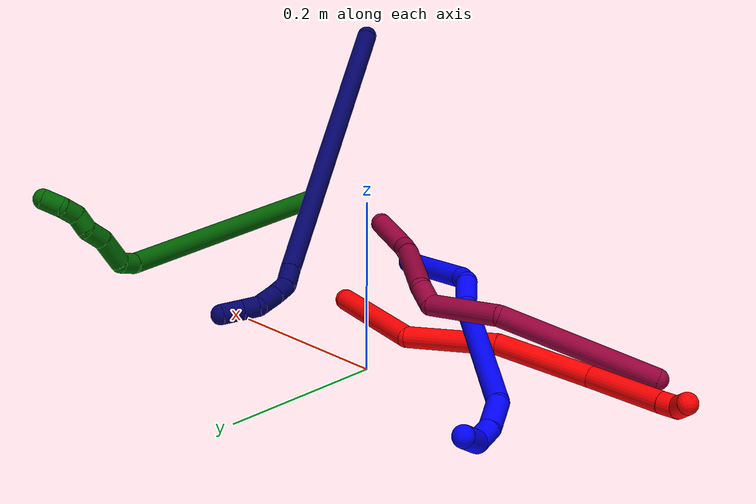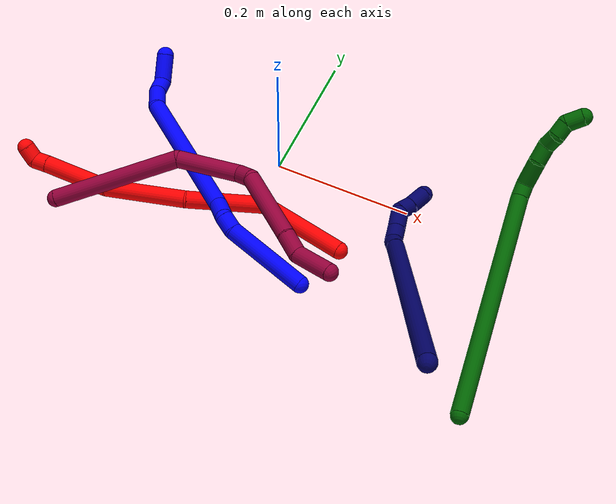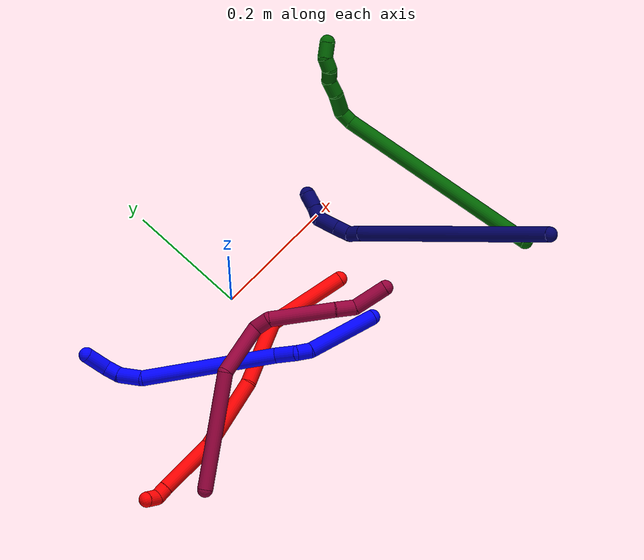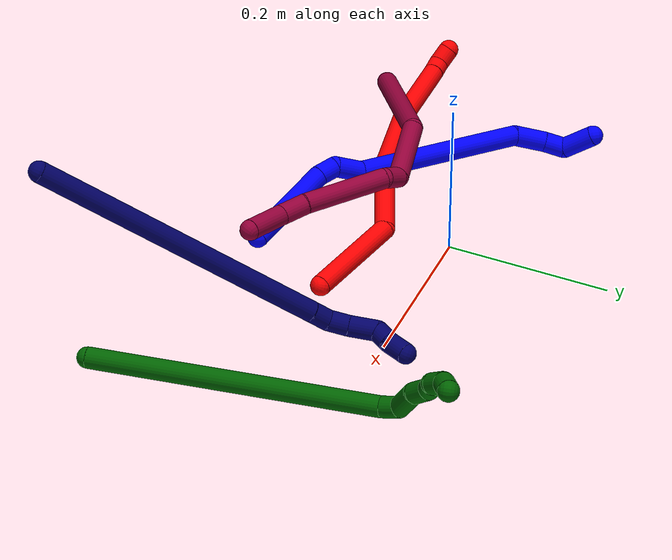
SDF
<sdf version="1.7">
 <world name="default">
  <model name="1">
   <static>0</static>
   <link name="1">
    <collision name="collision-cylinder-e_1_1_4">
     <pose>-0.033023 0.014927 -0.046938 -2.8337 -0.590627 2.19821</pose>
     <geometry><cylinder><radius>0.0125</radius><length>0.118601</length></cylinder></geometry>
     <surface>
      <friction><ode><mu>1.16</mu><mu2>1.16</mu2><slip1>0</slip1><slip2>0</slip2></ode></friction>
      <contact><ode><kp>1e+06</kp><kd>1</kd><max_vel>0</max_vel><min_depth>0.001</min_depth></ode></contact>
     </surface>
    </collision>
    <visual name="visual-cylinder-e_1_1_4">
     <pose>-0.033023 0.014927 -0.046938 -2.8337 -0.590627 2.19821</pose>
     <geometry><cylinder><radius>0.0125</radius><length>0.118601</length></cylinder></geometry>
     <material><ambient>0 0 1 1</ambient></material>
    </visual>
    <collision name="collision-cylinder-e_2_4_5">
     <pose>-0.069228 0.032554 -0.104809 -2.89945 -0.27531 1.70026</pose>
     <geometry><cylinder><radius>0.0125</radius><length>0.023403</length></cylinder></geometry>
     <surface>
      <friction><ode><mu>1.16</mu><mu2>1.16</mu2><slip1>0</slip1><slip2>0</slip2></ode></friction>
      <contact><ode><kp>1e+06</kp><kd>1</kd><max_vel>0</max_vel><min_depth>0.001</min_depth></ode></contact>
     </surface>
    </collision>
    <visual name="visual-cylinder-e_2_4_5">
     <pose>-0.069228 0.032554 -0.104809 -2.89945 -0.27531 1.70026</pose>
     <geometry><cylinder><radius>0.0125</radius><length>0.023403</length></cylinder></geometry>
     <material><ambient>0 0 1 1</ambient></material>
    </visual>
    <collision name="collision-cylinder-e_3_5_6">
     <pose>-0.072811 0.028892 -0.132498 2.77877 -0.022425 -0.122109</pose>
     <geometry><cylinder><radius>0.0125</radius><length>0.035855</length></cylinder></geometry>
     <surface>
      <friction><ode><mu>1.16</mu><mu2>1.16</mu2><slip1>0</slip1><slip2>0</slip2></ode></friction>
      <contact><ode><kp>1e+06</kp><kd>1</kd><max_vel>0</max_vel><min_depth>0.001</min_depth></ode></contact>
     </surface>
    </collision>
    <visual name="visual-cylinder-e_3_5_6">
     <pose>-0.072811 0.028892 -0.132498 2.77877 -0.022425 -0.122109</pose>
     <geometry><cylinder><radius>0.0125</radius><length>0.035855</length></cylinder></geometry>
     <material><ambient>0 0 1 1</ambient></material>
    </visual>
    <collision name="collision-cylinder-e_4_6_7">
     <pose>-0.093492 0.019986 -0.255371 3.11761 -0.188774 -2.88958</pose>
     <geometry><cylinder><radius>0.0125</radius><length>0.216136</length></cylinder></geometry>
     <surface>
      <friction><ode><mu>1.16</mu><mu2>1.16</mu2><slip1>0</slip1><slip2>0</slip2></ode></friction>
      <contact><ode><kp>1e+06</kp><kd>1</kd><max_vel>0</max_vel><min_depth>0.001</min_depth></ode></contact>
     </surface>
    </collision>
    <visual name="visual-cylinder-e_4_6_7">
     <pose>-0.093492 0.019986 -0.255371 3.11761 -0.188774 -2.88958</pose>
     <geometry><cylinder><radius>0.0125</radius><length>0.216136</length></cylinder></geometry>
     <material><ambient>0 0 1 1</ambient></material>
    </visual>
    <collision name="collision-cylinder-e_5_7_8">
     <pose>-0.110036 0.012497 -0.380348 2.88527 0.189346 1.27005</pose>
     <geometry><cylinder><radius>0.0125</radius><length>0.039701</length></cylinder></geometry>
     <surface>
      <friction><ode><mu>1.16</mu><mu2>1.16</mu2><slip1>0</slip1><slip2>0</slip2></ode></friction>
      <contact><ode><kp>1e+06</kp><kd>1</kd><max_vel>0</max_vel><min_depth>0.001</min_depth></ode></contact>
     </surface>
    </collision>
    <visual name="visual-cylinder-e_5_7_8">
     <pose>-0.110036 0.012497 -0.380348 2.88527 0.189346 1.27005</pose>
     <geometry><cylinder><radius>0.0125</radius><length>0.039701</length></cylinder></geometry>
     <material><ambient>0 0 1 1</ambient></material>
    </visual>
    <collision name="collision-cylinder-e_6_8_9">
     <pose>-0.100092 0.005452 -0.410248 2.95337 0.504592 2.4396</pose>
     <geometry><cylinder><radius>0.0125</radius><length>0.02568</length></cylinder></geometry>
     <surface>
      <friction><ode><mu>1.16</mu><mu2>1.16</mu2><slip1>0</slip1><slip2>0</slip2></ode></friction>
      <contact><ode><kp>1e+06</kp><kd>1</kd><max_vel>0</max_vel><min_depth>0.001</min_depth></ode></contact>
     </surface>
    </collision>
    <visual name="visual-cylinder-e_6_8_9">
     <pose>-0.100092 0.005452 -0.410248 2.95337 0.504592 2.4396</pose>
     <geometry><cylinder><radius>0.0125</radius><length>0.02568</length></cylinder></geometry>
     <material><ambient>0 0 1 1</ambient></material>
    </visual>
    <collision name="collision-cylinder-e_7_9_2">
     <pose>-0.086749 0.014937 -0.436368 -2.48634 0.358929 -0.980596</pose>
     <geometry><cylinder><radius>0.0125</radius><length>0.040624</length></cylinder></geometry>
     <surface>
      <friction><ode><mu>1.16</mu><mu2>1.16</mu2><slip1>0</slip1><slip2>0</slip2></ode></friction>
      <contact><ode><kp>1e+06</kp><kd>1</kd><max_vel>0</max_vel><min_depth>0.001</min_depth></ode></contact>
     </surface>
    </collision>
    <visual name="visual-cylinder-e_7_9_2">
     <pose>-0.086749 0.014937 -0.436368 -2.48634 0.358929 -0.980596</pose>
     <geometry><cylinder><radius>0.0125</radius><length>0.040624</length></cylinder></geometry>
     <material><ambient>0 0 1 1</ambient></material>
    </visual>
    <collision name="collision-sphere-2">
     <pose>-0.079614 0.026525 -0.451447 0 -0 0</pose>
     <geometry><sphere><radius>0.0125</radius></sphere></geometry>
     <surface>
      <friction><ode><mu>1.16</mu><mu2>1.16</mu2><slip1>0</slip1><slip2>0</slip2></ode></friction>
      <contact><ode><kp>1e+06</kp><kd>1</kd><max_vel>0</max_vel><min_depth>0.001</min_depth></ode></contact>
     </surface>
    </collision>
    <visual name="visual-sphere-2">
     <pose>-0.079614 0.026525 -0.451447 0 -0 0</pose>
     <geometry><sphere><radius>0.0125</radius></sphere></geometry>
     <material><ambient>0 0 1 1</ambient></material>
    </visual>
    <collision name="collision-sphere-9">
     <pose>-0.093884 0.003348 -0.421289 0 -0 0</pose>
     <geometry><sphere><radius>0.0125</radius></sphere></geometry>
     <surface>
      <friction><ode><mu>1.16</mu><mu2>1.16</mu2><slip1>0</slip1><slip2>0</slip2></ode></friction>
      <contact><ode><kp>1e+06</kp><kd>1</kd><max_vel>0</max_vel><min_depth>0.001</min_depth></ode></contact>
     </surface>
    </collision>
    <visual name="visual-sphere-9">
     <pose>-0.093884 0.003348 -0.421289 0 -0 0</pose>
     <geometry><sphere><radius>0.0125</radius></sphere></geometry>
     <material><ambient>0 0 1 1</ambient></material>
    </visual>
    <collision name="collision-sphere-4">
     <pose>-0.066047 0.029853 -0.093877 0 -0 0</pose>
     <geometry><sphere><radius>0.0125</radius></sphere></geometry>
     <surface>
      <friction><ode><mu>1.16</mu><mu2>1.16</mu2><slip1>0</slip1><slip2>0</slip2></ode></friction>
      <contact><ode><kp>1e+06</kp><kd>1</kd><max_vel>0</max_vel><min_depth>0.001</min_depth></ode></contact>
     </surface>
    </collision>
    <visual name="visual-sphere-4">
     <pose>-0.066047 0.029853 -0.093877 0 -0 0</pose>
     <geometry><sphere><radius>0.0125</radius></sphere></geometry>
     <material><ambient>0 0 1 1</ambient></material>
    </visual>
    <collision name="collision-sphere-1">
     <geometry><sphere><radius>0.0125</radius></sphere></geometry>
     <surface>
      <friction><ode><mu>1.16</mu><mu2>1.16</mu2><slip1>0</slip1><slip2>0</slip2></ode></friction>
      <contact><ode><kp>1e+06</kp><kd>1</kd><max_vel>0</max_vel><min_depth>0.001</min_depth></ode></contact>
     </surface>
    </collision>
    <visual name="visual-sphere-1">
     <geometry><sphere><radius>0.0125</radius></sphere></geometry>
     <material><ambient>0 0 1 1</ambient></material>
    </visual>
    <collision name="collision-sphere-8">
     <pose>-0.106299 0.007555 -0.399206 0 -0 0</pose>
     <geometry><sphere><radius>0.0125</radius></sphere></geometry>
     <surface>
      <friction><ode><mu>1.16</mu><mu2>1.16</mu2><slip1>0</slip1><slip2>0</slip2></ode></friction>
      <contact><ode><kp>1e+06</kp><kd>1</kd><max_vel>0</max_vel><min_depth>0.001</min_depth></ode></contact>
     </surface>
    </collision>
    <visual name="visual-sphere-8">
     <pose>-0.106299 0.007555 -0.399206 0 -0 0</pose>
     <geometry><sphere><radius>0.0125</radius></sphere></geometry>
     <material><ambient>0 0 1 1</ambient></material>
    </visual>
    <collision name="collision-sphere-5">
     <pose>-0.072409 0.035254 -0.115741 0 -0 0</pose>
     <geometry><sphere><radius>0.0125</radius></sphere></geometry>
     <surface>
      <friction><ode><mu>1.16</mu><mu2>1.16</mu2><slip1>0</slip1><slip2>0</slip2></ode></friction>
      <contact><ode><kp>1e+06</kp><kd>1</kd><max_vel>0</max_vel><min_depth>0.001</min_depth></ode></contact>
     </surface>
    </collision>
    <visual name="visual-sphere-5">
     <pose>-0.072409 0.035254 -0.115741 0 -0 0</pose>
     <geometry><sphere><radius>0.0125</radius></sphere></geometry>
     <material><ambient>0 0 1 1</ambient></material>
    </visual>
    <collision name="collision-sphere-6">
     <pose>-0.073213 0.022531 -0.149254 0 -0 0</pose>
     <geometry><sphere><radius>0.0125</radius></sphere></geometry>
     <surface>
      <friction><ode><mu>1.16</mu><mu2>1.16</mu2><slip1>0</slip1><slip2>0</slip2></ode></friction>
      <contact><ode><kp>1e+06</kp><kd>1</kd><max_vel>0</max_vel><min_depth>0.001</min_depth></ode></contact>
     </surface>
    </collision>
    <visual name="visual-sphere-6">
     <pose>-0.073213 0.022531 -0.149254 0 -0 0</pose>
     <geometry><sphere><radius>0.0125</radius></sphere></geometry>
     <material><ambient>0 0 1 1</ambient></material>
    </visual>
    <collision name="collision-sphere-7">
     <pose>-0.113772 0.01744 -0.361489 0 -0 0</pose>
     <geometry><sphere><radius>0.0125</radius></sphere></geometry>
     <surface>
      <friction><ode><mu>1.16</mu><mu2>1.16</mu2><slip1>0</slip1><slip2>0</slip2></ode></friction>
      <contact><ode><kp>1e+06</kp><kd>1</kd><max_vel>0</max_vel><min_depth>0.001</min_depth></ode></contact>
     </surface>
    </collision>
    <visual name="visual-sphere-7">
     <pose>-0.113772 0.01744 -0.361489 0 -0 0</pose>
     <geometry><sphere><radius>0.0125</radius></sphere></geometry>
     <material><ambient>0 0 1 1</ambient></material>
    </visual>
    <inertial>
     <pose>-0.077635 0.018261 -0.222655 0 -0 0</pose>
     <mass>0.5</mass>
     <inertia>
      <ixx>-0.000984</ixx>
      <ixy>0</ixy>
      <ixz>0</ixz>
      <iyy>0.000812</iyy>
      <iyz>0</iyz>
      <izz>0.000183</izz>
     </inertia>
    </inertial>
   </link>
   <pose>0.122886 -0.194764 0.041941 1.49937 -0.03997 0.716982</pose>
  </model>
  <model name="2">
   <static>0</static>
   <link name="2">
    <collision name="collision-cylinder-e_1_1_4">
     <pose>0.029121 -0.027437 0.051621 0.488535 0.462158 0.117151</pose>
     <geometry><cylinder><radius>0.0125</radius><length>0.130621</length></cylinder></geometry>
     <surface>
      <friction><ode><mu>1.16</mu><mu2>1.16</mu2><slip1>0</slip1><slip2>0</slip2></ode></friction>
      <contact><ode><kp>1e+06</kp><kd>1</kd><max_vel>0</max_vel><min_depth>0.001</min_depth></ode></contact>
     </surface>
    </collision>
    <visual name="visual-cylinder-e_1_1_4">
     <pose>0.029121 -0.027437 0.051621 0.488535 0.462158 0.117151</pose>
     <geometry><cylinder><radius>0.0125</radius><length>0.130621</length></cylinder></geometry>
     <material><ambient>1 0 0 1</ambient></material>
    </visual>
    <collision name="collision-cylinder-e_2_4_5">
     <pose>0.075035 -0.103046 0.125677 1.13494 0.306087 0.19601</pose>
     <geometry><cylinder><radius>0.0125</radius><length>0.111463</length></cylinder></geometry>
     <surface>
      <friction><ode><mu>1.16</mu><mu2>1.16</mu2><slip1>0</slip1><slip2>0</slip2></ode></friction>
      <contact><ode><kp>1e+06</kp><kd>1</kd><max_vel>0</max_vel><min_depth>0.001</min_depth></ode></contact>
     </surface>
    </collision>
    <visual name="visual-cylinder-e_2_4_5">
     <pose>0.075035 -0.103046 0.125677 1.13494 0.306087 0.19601</pose>
     <geometry><cylinder><radius>0.0125</radius><length>0.111463</length></cylinder></geometry>
     <material><ambient>1 0 0 1</ambient></material>
    </visual>
    <collision name="collision-cylinder-e_3_5_6">
     <pose>0.106567 -0.195218 0.185491 0.866563 0.249953 0.116103</pose>
     <geometry><cylinder><radius>0.0125</radius><length>0.119168</length></cylinder></geometry>
     <surface>
      <friction><ode><mu>1.16</mu><mu2>1.16</mu2><slip1>0</slip1><slip2>0</slip2></ode></friction>
      <contact><ode><kp>1e+06</kp><kd>1</kd><max_vel>0</max_vel><min_depth>0.001</min_depth></ode></contact>
     </surface>
    </collision>
    <visual name="visual-cylinder-e_3_5_6">
     <pose>0.106567 -0.195218 0.185491 0.866563 0.249953 0.116103</pose>
     <geometry><cylinder><radius>0.0125</radius><length>0.119168</length></cylinder></geometry>
     <material><ambient>1 0 0 1</ambient></material>
    </visual>
    <collision name="collision-cylinder-e_4_6_7">
     <pose>0.141103 -0.267924 0.25611 0.712359 0.423466 0.159607</pose>
     <geometry><cylinder><radius>0.0125</radius><length>0.096352</length></cylinder></geometry>
     <surface>
      <friction><ode><mu>1.16</mu><mu2>1.16</mu2><slip1>0</slip1><slip2>0</slip2></ode></friction>
      <contact><ode><kp>1e+06</kp><kd>1</kd><max_vel>0</max_vel><min_depth>0.001</min_depth></ode></contact>
     </surface>
    </collision>
    <visual name="visual-cylinder-e_4_6_7">
     <pose>0.141103 -0.267924 0.25611 0.712359 0.423466 0.159607</pose>
     <geometry><cylinder><radius>0.0125</radius><length>0.096352</length></cylinder></geometry>
     <material><ambient>1 0 0 1</ambient></material>
    </visual>
    <collision name="collision-cylinder-e_5_7_8">
     <pose>0.164973 -0.303261 0.296174 0.770921 0.404573 0.166053</pose>
     <geometry><cylinder><radius>0.0125</radius><length>0.0207</length></cylinder></geometry>
     <surface>
      <friction><ode><mu>1.16</mu><mu2>1.16</mu2><slip1>0</slip1><slip2>0</slip2></ode></friction>
      <contact><ode><kp>1e+06</kp><kd>1</kd><max_vel>0</max_vel><min_depth>0.001</min_depth></ode></contact>
     </surface>
    </collision>
    <visual name="visual-cylinder-e_5_7_8">
     <pose>0.164973 -0.303261 0.296174 0.770921 0.404573 0.166053</pose>
     <geometry><cylinder><radius>0.0125</radius><length>0.0207</length></cylinder></geometry>
     <material><ambient>1 0 0 1</ambient></material>
    </visual>
    <collision name="collision-cylinder-e_6_8_2">
     <pose>0.178754 -0.312373 0.307156 0.538374 1.10808 0.338108</pose>
     <geometry><cylinder><radius>0.0125</radius><length>0.021695</length></cylinder></geometry>
     <surface>
      <friction><ode><mu>1.16</mu><mu2>1.16</mu2><slip1>0</slip1><slip2>0</slip2></ode></friction>
      <contact><ode><kp>1e+06</kp><kd>1</kd><max_vel>0</max_vel><min_depth>0.001</min_depth></ode></contact>
     </surface>
    </collision>
    <visual name="visual-cylinder-e_6_8_2">
     <pose>0.178754 -0.312373 0.307156 0.538374 1.10808 0.338108</pose>
     <geometry><cylinder><radius>0.0125</radius><length>0.021695</length></cylinder></geometry>
     <material><ambient>1 0 0 1</ambient></material>
    </visual>
    <collision name="collision-sphere-2">
     <pose>0.188461 -0.314856 0.311313 0 -0 0</pose>
     <geometry><sphere><radius>0.0125</radius></sphere></geometry>
     <surface>
      <friction><ode><mu>1.16</mu><mu2>1.16</mu2><slip1>0</slip1><slip2>0</slip2></ode></friction>
      <contact><ode><kp>1e+06</kp><kd>1</kd><max_vel>0</max_vel><min_depth>0.001</min_depth></ode></contact>
     </surface>
    </collision>
    <visual name="visual-sphere-2">
     <pose>0.188461 -0.314856 0.311313 0 -0 0</pose>
     <geometry><sphere><radius>0.0125</radius></sphere></geometry>
     <material><ambient>1 0 0 1</ambient></material>
    </visual>
    <collision name="collision-sphere-4">
     <pose>0.058242 -0.054874 0.103241 0 -0 0</pose>
     <geometry><sphere><radius>0.0125</radius></sphere></geometry>
     <surface>
      <friction><ode><mu>1.16</mu><mu2>1.16</mu2><slip1>0</slip1><slip2>0</slip2></ode></friction>
      <contact><ode><kp>1e+06</kp><kd>1</kd><max_vel>0</max_vel><min_depth>0.001</min_depth></ode></contact>
     </surface>
    </collision>
    <visual name="visual-sphere-4">
     <pose>0.058242 -0.054874 0.103241 0 -0 0</pose>
     <geometry><sphere><radius>0.0125</radius></sphere></geometry>
     <material><ambient>1 0 0 1</ambient></material>
    </visual>
    <collision name="collision-sphere-1">
     <geometry><sphere><radius>0.0125</radius></sphere></geometry>
     <surface>
      <friction><ode><mu>1.16</mu><mu2>1.16</mu2><slip1>0</slip1><slip2>0</slip2></ode></friction>
      <contact><ode><kp>1e+06</kp><kd>1</kd><max_vel>0</max_vel><min_depth>0.001</min_depth></ode></contact>
     </surface>
    </collision>
    <visual name="visual-sphere-1">
     <geometry><sphere><radius>0.0125</radius></sphere></geometry>
     <material><ambient>1 0 0 1</ambient></material>
    </visual>
    <collision name="collision-sphere-8">
     <pose>0.169047 -0.30989 0.302999 0 -0 0</pose>
     <geometry><sphere><radius>0.0125</radius></sphere></geometry>
     <surface>
      <friction><ode><mu>1.16</mu><mu2>1.16</mu2><slip1>0</slip1><slip2>0</slip2></ode></friction>
      <contact><ode><kp>1e+06</kp><kd>1</kd><max_vel>0</max_vel><min_depth>0.001</min_depth></ode></contact>
     </surface>
    </collision>
    <visual name="visual-sphere-8">
     <pose>0.169047 -0.30989 0.302999 0 -0 0</pose>
     <geometry><sphere><radius>0.0125</radius></sphere></geometry>
     <material><ambient>1 0 0 1</ambient></material>
    </visual>
    <collision name="collision-sphere-5">
     <pose>0.091829 -0.151219 0.148112 0 -0 0</pose>
     <geometry><sphere><radius>0.0125</radius></sphere></geometry>
     <surface>
      <friction><ode><mu>1.16</mu><mu2>1.16</mu2><slip1>0</slip1><slip2>0</slip2></ode></friction>
      <contact><ode><kp>1e+06</kp><kd>1</kd><max_vel>0</max_vel><min_depth>0.001</min_depth></ode></contact>
     </surface>
    </collision>
    <visual name="visual-sphere-5">
     <pose>0.091829 -0.151219 0.148112 0 -0 0</pose>
     <geometry><sphere><radius>0.0125</radius></sphere></geometry>
     <material><ambient>1 0 0 1</ambient></material>
    </visual>
    <collision name="collision-sphere-6">
     <pose>0.121306 -0.239216 0.22287 0 -0 0</pose>
     <geometry><sphere><radius>0.0125</radius></sphere></geometry>
     <surface>
      <friction><ode><mu>1.16</mu><mu2>1.16</mu2><slip1>0</slip1><slip2>0</slip2></ode></friction>
      <contact><ode><kp>1e+06</kp><kd>1</kd><max_vel>0</max_vel><min_depth>0.001</min_depth></ode></contact>
     </surface>
    </collision>
    <visual name="visual-sphere-6">
     <pose>0.121306 -0.239216 0.22287 0 -0 0</pose>
     <geometry><sphere><radius>0.0125</radius></sphere></geometry>
     <material><ambient>1 0 0 1</ambient></material>
    </visual>
    <collision name="collision-sphere-7">
     <pose>0.160899 -0.296631 0.28935 0 -0 0</pose>
     <geometry><sphere><radius>0.0125</radius></sphere></geometry>
     <surface>
      <friction><ode><mu>1.16</mu><mu2>1.16</mu2><slip1>0</slip1><slip2>0</slip2></ode></friction>
      <contact><ode><kp>1e+06</kp><kd>1</kd><max_vel>0</max_vel><min_depth>0.001</min_depth></ode></contact>
     </surface>
    </collision>
    <visual name="visual-sphere-7">
     <pose>0.160899 -0.296631 0.28935 0 -0 0</pose>
     <geometry><sphere><radius>0.0125</radius></sphere></geometry>
     <material><ambient>1 0 0 1</ambient></material>
    </visual>
    <inertial>
     <pose>0.091511 -0.154406 0.160654 0 -0 0</pose>
     <mass>0.5</mass>
     <inertia>
      <ixx>0.00058</ixx>
      <ixy>0</ixy>
      <ixz>0</ixz>
      <iyy>0.000435</iyy>
      <iyz>0</iyz>
      <izz>0.000172</izz>
     </inertia>
    </inertial>
   </link>
   <pose>0.141645 -0.105219 0.012613 -3.06785 -1.03101 2.44037</pose>
  </model>
  <model name="6">
   <static>0</static>
   <link name="6">
    <collision name="collision-cylinder-e_1_1_4">
     <pose>0.003719 0.017617 0.171891 -0.102135 0.021519 -0.0011</pose>
     <geometry><cylinder><radius>0.0125</radius><length>0.345663</length></cylinder></geometry>
     <surface>
      <friction><ode><mu>1.16</mu><mu2>1.16</mu2><slip1>0</slip1><slip2>0</slip2></ode></friction>
      <contact><ode><kp>1e+06</kp><kd>1</kd><max_vel>0</max_vel><min_depth>0.001</min_depth></ode></contact>
     </surface>
    </collision>
    <visual name="visual-cylinder-e_1_1_4">
     <pose>0.003719 0.017617 0.171891 -0.102135 0.021519 -0.0011</pose>
     <geometry><cylinder><radius>0.0125</radius><length>0.345663</length></cylinder></geometry>
     <material><ambient>0 0.392157 0.003922 1</ambient></material>
    </visual>
    <collision name="collision-cylinder-e_2_4_5">
     <pose>0.010177 0.038235 0.353876 -0.288892 0.254508 -0.037217</pose>
     <geometry><cylinder><radius>0.0125</radius><length>0.021763</length></cylinder></geometry>
     <surface>
      <friction><ode><mu>1.16</mu><mu2>1.16</mu2><slip1>0</slip1><slip2>0</slip2></ode></friction>
      <contact><ode><kp>1e+06</kp><kd>1</kd><max_vel>0</max_vel><min_depth>0.001</min_depth></ode></contact>
     </surface>
    </collision>
    <visual name="visual-cylinder-e_2_4_5">
     <pose>0.010177 0.038235 0.353876 -0.288892 0.254508 -0.037217</pose>
     <geometry><cylinder><radius>0.0125</radius><length>0.021763</length></cylinder></geometry>
     <material><ambient>0 0.392157 0.003922 1</ambient></material>
    </visual>
    <collision name="collision-cylinder-e_3_5_6">
     <pose>0.027394 0.051098 0.372584 -0.852955 0.835495 -0.398022</pose>
     <geometry><cylinder><radius>0.0125</radius><length>0.039042</length></cylinder></geometry>
     <surface>
      <friction><ode><mu>1.16</mu><mu2>1.16</mu2><slip1>0</slip1><slip2>0</slip2></ode></friction>
      <contact><ode><kp>1e+06</kp><kd>1</kd><max_vel>0</max_vel><min_depth>0.001</min_depth></ode></contact>
     </surface>
    </collision>
    <visual name="visual-cylinder-e_3_5_6">
     <pose>0.027394 0.051098 0.372584 -0.852955 0.835495 -0.398022</pose>
     <geometry><cylinder><radius>0.0125</radius><length>0.039042</length></cylinder></geometry>
     <material><ambient>0 0.392157 0.003922 1</ambient></material>
    </visual>
    <collision name="collision-cylinder-e_4_6_7">
     <pose>0.048726 0.067465 0.390041 -0.63408 0.558152 -0.18749</pose>
     <geometry><cylinder><radius>0.0125</radius><length>0.025883</length></cylinder></geometry>
     <surface>
      <friction><ode><mu>1.16</mu><mu2>1.16</mu2><slip1>0</slip1><slip2>0</slip2></ode></friction>
      <contact><ode><kp>1e+06</kp><kd>1</kd><max_vel>0</max_vel><min_depth>0.001</min_depth></ode></contact>
     </surface>
    </collision>
    <visual name="visual-cylinder-e_4_6_7">
     <pose>0.048726 0.067465 0.390041 -0.63408 0.558152 -0.18749</pose>
     <geometry><cylinder><radius>0.0125</radius><length>0.025883</length></cylinder></geometry>
     <material><ambient>0 0.392157 0.003922 1</ambient></material>
    </visual>
    <collision name="collision-cylinder-e_5_7_8">
     <pose>0.062578 0.081483 0.401284 -1.26172 0.725677 -0.54102</pose>
     <geometry><cylinder><radius>0.0125</radius><length>0.021089</length></cylinder></geometry>
     <surface>
      <friction><ode><mu>1.16</mu><mu2>1.16</mu2><slip1>0</slip1><slip2>0</slip2></ode></friction>
      <contact><ode><kp>1e+06</kp><kd>1</kd><max_vel>0</max_vel><min_depth>0.001</min_depth></ode></contact>
     </surface>
    </collision>
    <visual name="visual-cylinder-e_5_7_8">
     <pose>0.062578 0.081483 0.401284 -1.26172 0.725677 -0.54102</pose>
     <geometry><cylinder><radius>0.0125</radius><length>0.021089</length></cylinder></geometry>
     <material><ambient>0 0.392157 0.003922 1</ambient></material>
    </visual>
    <collision name="collision-cylinder-e_6_8_9">
     <pose>0.074411 0.095358 0.41064 -0.74067 0.473928 -0.186979</pose>
     <geometry><cylinder><radius>0.0125</radius><length>0.021189</length></cylinder></geometry>
     <surface>
      <friction><ode><mu>1.16</mu><mu2>1.16</mu2><slip1>0</slip1><slip2>0</slip2></ode></friction>
      <contact><ode><kp>1e+06</kp><kd>1</kd><max_vel>0</max_vel><min_depth>0.001</min_depth></ode></contact>
     </surface>
    </collision>
    <visual name="visual-cylinder-e_6_8_9">
     <pose>0.074411 0.095358 0.41064 -0.74067 0.473928 -0.186979</pose>
     <geometry><cylinder><radius>0.0125</radius><length>0.021189</length></cylinder></geometry>
     <material><ambient>0 0.392157 0.003922 1</ambient></material>
    </visual>
    <collision name="collision-cylinder-e_7_9_2">
     <pose>0.080504 0.11356 0.421971 -1.21695 0.099372 -0.069257</pose>
     <geometry><cylinder><radius>0.0125</radius><length>0.025371</length></cylinder></geometry>
     <surface>
      <friction><ode><mu>1.16</mu><mu2>1.16</mu2><slip1>0</slip1><slip2>0</slip2></ode></friction>
      <contact><ode><kp>1e+06</kp><kd>1</kd><max_vel>0</max_vel><min_depth>0.001</min_depth></ode></contact>
     </surface>
    </collision>
    <visual name="visual-cylinder-e_7_9_2">
     <pose>0.080504 0.11356 0.421971 -1.21695 0.099372 -0.069257</pose>
     <geometry><cylinder><radius>0.0125</radius><length>0.025371</length></cylinder></geometry>
     <material><ambient>0 0.392157 0.003922 1</ambient></material>
    </visual>
    <collision name="collision-sphere-2">
     <pose>0.081763 0.125401 0.426345 0 -0 0</pose>
     <geometry><sphere><radius>0.0125</radius></sphere></geometry>
     <surface>
      <friction><ode><mu>1.16</mu><mu2>1.16</mu2><slip1>0</slip1><slip2>0</slip2></ode></friction>
      <contact><ode><kp>1e+06</kp><kd>1</kd><max_vel>0</max_vel><min_depth>0.001</min_depth></ode></contact>
     </surface>
    </collision>
    <visual name="visual-sphere-2">
     <pose>0.081763 0.125401 0.426345 0 -0 0</pose>
     <geometry><sphere><radius>0.0125</radius></sphere></geometry>
     <material><ambient>0 0.392157 0.003922 1</ambient></material>
    </visual>
    <collision name="collision-sphere-9">
     <pose>0.079246 0.101719 0.417597 0 -0 0</pose>
     <geometry><sphere><radius>0.0125</radius></sphere></geometry>
     <surface>
      <friction><ode><mu>1.16</mu><mu2>1.16</mu2><slip1>0</slip1><slip2>0</slip2></ode></friction>
      <contact><ode><kp>1e+06</kp><kd>1</kd><max_vel>0</max_vel><min_depth>0.001</min_depth></ode></contact>
     </surface>
    </collision>
    <visual name="visual-sphere-9">
     <pose>0.079246 0.101719 0.417597 0 -0 0</pose>
     <geometry><sphere><radius>0.0125</radius></sphere></geometry>
     <material><ambient>0 0.392157 0.003922 1</ambient></material>
    </visual>
    <collision name="collision-sphere-4">
     <pose>0.007438 0.035235 0.343782 0 -0 0</pose>
     <geometry><sphere><radius>0.0125</radius></sphere></geometry>
     <surface>
      <friction><ode><mu>1.16</mu><mu2>1.16</mu2><slip1>0</slip1><slip2>0</slip2></ode></friction>
      <contact><ode><kp>1e+06</kp><kd>1</kd><max_vel>0</max_vel><min_depth>0.001</min_depth></ode></contact>
     </surface>
    </collision>
    <visual name="visual-sphere-4">
     <pose>0.007438 0.035235 0.343782 0 -0 0</pose>
     <geometry><sphere><radius>0.0125</radius></sphere></geometry>
     <material><ambient>0 0.392157 0.003922 1</ambient></material>
    </visual>
    <collision name="collision-sphere-1">
     <geometry><sphere><radius>0.0125</radius></sphere></geometry>
     <surface>
      <friction><ode><mu>1.16</mu><mu2>1.16</mu2><slip1>0</slip1><slip2>0</slip2></ode></friction>
      <contact><ode><kp>1e+06</kp><kd>1</kd><max_vel>0</max_vel><min_depth>0.001</min_depth></ode></contact>
     </surface>
    </collision>
    <visual name="visual-sphere-1">
     <geometry><sphere><radius>0.0125</radius></sphere></geometry>
     <material><ambient>0 0.392157 0.003922 1</ambient></material>
    </visual>
    <collision name="collision-sphere-8">
     <pose>0.069576 0.088997 0.403683 0 -0 0</pose>
     <geometry><sphere><radius>0.0125</radius></sphere></geometry>
     <surface>
      <friction><ode><mu>1.16</mu><mu2>1.16</mu2><slip1>0</slip1><slip2>0</slip2></ode></friction>
      <contact><ode><kp>1e+06</kp><kd>1</kd><max_vel>0</max_vel><min_depth>0.001</min_depth></ode></contact>
     </surface>
    </collision>
    <visual name="visual-sphere-8">
     <pose>0.069576 0.088997 0.403683 0 -0 0</pose>
     <geometry><sphere><radius>0.0125</radius></sphere></geometry>
     <material><ambient>0 0.392157 0.003922 1</ambient></material>
    </visual>
    <collision name="collision-sphere-5">
     <pose>0.012917 0.041235 0.363971 0 -0 0</pose>
     <geometry><sphere><radius>0.0125</radius></sphere></geometry>
     <surface>
      <friction><ode><mu>1.16</mu><mu2>1.16</mu2><slip1>0</slip1><slip2>0</slip2></ode></friction>
      <contact><ode><kp>1e+06</kp><kd>1</kd><max_vel>0</max_vel><min_depth>0.001</min_depth></ode></contact>
     </surface>
    </collision>
    <visual name="visual-sphere-5">
     <pose>0.012917 0.041235 0.363971 0 -0 0</pose>
     <geometry><sphere><radius>0.0125</radius></sphere></geometry>
     <material><ambient>0 0.392157 0.003922 1</ambient></material>
    </visual>
    <collision name="collision-sphere-6">
     <pose>0.041872 0.060962 0.381197 0 -0 0</pose>
     <geometry><sphere><radius>0.0125</radius></sphere></geometry>
     <surface>
      <friction><ode><mu>1.16</mu><mu2>1.16</mu2><slip1>0</slip1><slip2>0</slip2></ode></friction>
      <contact><ode><kp>1e+06</kp><kd>1</kd><max_vel>0</max_vel><min_depth>0.001</min_depth></ode></contact>
     </surface>
    </collision>
    <visual name="visual-sphere-6">
     <pose>0.041872 0.060962 0.381197 0 -0 0</pose>
     <geometry><sphere><radius>0.0125</radius></sphere></geometry>
     <material><ambient>0 0.392157 0.003922 1</ambient></material>
    </visual>
    <collision name="collision-sphere-7">
     <pose>0.05558 0.073969 0.398884 0 -0 0</pose>
     <geometry><sphere><radius>0.0125</radius></sphere></geometry>
     <surface>
      <friction><ode><mu>1.16</mu><mu2>1.16</mu2><slip1>0</slip1><slip2>0</slip2></ode></friction>
      <contact><ode><kp>1e+06</kp><kd>1</kd><max_vel>0</max_vel><min_depth>0.001</min_depth></ode></contact>
     </surface>
    </collision>
    <visual name="visual-sphere-7">
     <pose>0.05558 0.073969 0.398884 0 -0 0</pose>
     <geometry><sphere><radius>0.0125</radius></sphere></geometry>
     <material><ambient>0 0.392157 0.003922 1</ambient></material>
    </visual>
    <inertial>
     <pose>0.017553 0.034566 0.239258 0 -0 0</pose>
     <mass>0.5</mass>
     <inertia>
      <ixx>0.003466</ixx>
      <ixy>0</ixy>
      <ixz>0</ixz>
      <iyy>0.003452</iyy>
      <iyz>0</iyz>
      <izz>-0.000411</izz>
     </inertia>
    </inertial>
   </link>
   <pose>0.388512 -0.283475 0.034879 1.61516 -1.28467 -2.96057</pose>
  </model>
  <model name="7">
   <static>0</static>
   <link name="7">
    <collision name="collision-cylinder-e_1_1_4">
     <pose>0.051791 0.01131 -0.177148 -3.07783 0.283885 -2.70246</pose>
     <geometry><cylinder><radius>0.0125</radius><length>0.369819</length></cylinder></geometry>
     <surface>
      <friction><ode><mu>1.16</mu><mu2>1.16</mu2><slip1>0</slip1><slip2>0</slip2></ode></friction>
      <contact><ode><kp>1e+06</kp><kd>1</kd><max_vel>0</max_vel><min_depth>0.001</min_depth></ode></contact>
     </surface>
    </collision>
    <visual name="visual-cylinder-e_1_1_4">
     <pose>0.051791 0.01131 -0.177148 -3.07783 0.283885 -2.70246</pose>
     <geometry><cylinder><radius>0.0125</radius><length>0.369819</length></cylinder></geometry>
     <material><ambient>0.003922 0 0.403922 1</ambient></material>
    </visual>
    <collision name="collision-cylinder-e_2_4_5">
     <pose>0.10751 0.02338 -0.3657 -3.0751 0.331104 -2.74861</pose>
     <geometry><cylinder><radius>0.0125</radius><length>0.024172</length></cylinder></geometry>
     <surface>
      <friction><ode><mu>1.16</mu><mu2>1.16</mu2><slip1>0</slip1><slip2>0</slip2></ode></friction>
      <contact><ode><kp>1e+06</kp><kd>1</kd><max_vel>0</max_vel><min_depth>0.001</min_depth></ode></contact>
     </surface>
    </collision>
    <visual name="visual-cylinder-e_2_4_5">
     <pose>0.10751 0.02338 -0.3657 -3.0751 0.331104 -2.74861</pose>
     <geometry><cylinder><radius>0.0125</radius><length>0.024172</length></cylinder></geometry>
     <material><ambient>0.003922 0 0.403922 1</ambient></material>
    </visual>
    <collision name="collision-cylinder-e_3_5_6">
     <pose>0.109001 0.022817 -0.389261 3.0332 -0.196827 -2.13672</pose>
     <geometry><cylinder><radius>0.0125</radius><length>0.024938</length></cylinder></geometry>
     <surface>
      <friction><ode><mu>1.16</mu><mu2>1.16</mu2><slip1>0</slip1><slip2>0</slip2></ode></friction>
      <contact><ode><kp>1e+06</kp><kd>1</kd><max_vel>0</max_vel><min_depth>0.001</min_depth></ode></contact>
     </surface>
    </collision>
    <visual name="visual-cylinder-e_3_5_6">
     <pose>0.109001 0.022817 -0.389261 3.0332 -0.196827 -2.13672</pose>
     <geometry><cylinder><radius>0.0125</radius><length>0.024938</length></cylinder></geometry>
     <material><ambient>0.003922 0 0.403922 1</ambient></material>
    </visual>
    <collision name="collision-cylinder-e_4_6_7">
     <pose>0.102307 0.018388 -0.417329 2.94881 -0.256731 -1.85576</pose>
     <geometry><cylinder><radius>0.0125</radius><length>0.033523</length></cylinder></geometry>
     <surface>
      <friction><ode><mu>1.16</mu><mu2>1.16</mu2><slip1>0</slip1><slip2>0</slip2></ode></friction>
      <contact><ode><kp>1e+06</kp><kd>1</kd><max_vel>0</max_vel><min_depth>0.001</min_depth></ode></contact>
     </surface>
    </collision>
    <visual name="visual-cylinder-e_4_6_7">
     <pose>0.102307 0.018388 -0.417329 2.94881 -0.256731 -1.85576</pose>
     <geometry><cylinder><radius>0.0125</radius><length>0.033523</length></cylinder></geometry>
     <material><ambient>0.003922 0 0.403922 1</ambient></material>
    </visual>
    <collision name="collision-cylinder-e_5_7_8">
     <pose>0.092005 0.019248 -0.440158 -2.62095 -0.648684 1.80161</pose>
     <geometry><cylinder><radius>0.0125</radius><length>0.020013</length></cylinder></geometry>
     <surface>
      <friction><ode><mu>1.16</mu><mu2>1.16</mu2><slip1>0</slip1><slip2>0</slip2></ode></friction>
      <contact><ode><kp>1e+06</kp><kd>1</kd><max_vel>0</max_vel><min_depth>0.001</min_depth></ode></contact>
     </surface>
    </collision>
    <visual name="visual-cylinder-e_5_7_8">
     <pose>0.092005 0.019248 -0.440158 -2.62095 -0.648684 1.80161</pose>
     <geometry><cylinder><radius>0.0125</radius><length>0.020013</length></cylinder></geometry>
     <material><ambient>0.003922 0 0.403922 1</ambient></material>
    </visual>
    <collision name="collision-cylinder-e_6_8_2">
     <pose>0.077668 0.026434 -0.457584 -2.84436 -0.646333 2.30079</pose>
     <geometry><cylinder><radius>0.0125</radius><length>0.027535</length></cylinder></geometry>
     <surface>
      <friction><ode><mu>1.16</mu><mu2>1.16</mu2><slip1>0</slip1><slip2>0</slip2></ode></friction>
      <contact><ode><kp>1e+06</kp><kd>1</kd><max_vel>0</max_vel><min_depth>0.001</min_depth></ode></contact>
     </surface>
    </collision>
    <visual name="visual-cylinder-e_6_8_2">
     <pose>0.077668 0.026434 -0.457584 -2.84436 -0.646333 2.30079</pose>
     <geometry><cylinder><radius>0.0125</radius><length>0.027535</length></cylinder></geometry>
     <material><ambient>0.003922 0 0.403922 1</ambient></material>
    </visual>
    <collision name="collision-sphere-2">
     <pose>0.069377 0.029653 -0.468093 0 -0 0</pose>
     <geometry><sphere><radius>0.0125</radius></sphere></geometry>
     <surface>
      <friction><ode><mu>1.16</mu><mu2>1.16</mu2><slip1>0</slip1><slip2>0</slip2></ode></friction>
      <contact><ode><kp>1e+06</kp><kd>1</kd><max_vel>0</max_vel><min_depth>0.001</min_depth></ode></contact>
     </surface>
    </collision>
    <visual name="visual-sphere-2">
     <pose>0.069377 0.029653 -0.468093 0 -0 0</pose>
     <geometry><sphere><radius>0.0125</radius></sphere></geometry>
     <material><ambient>0.003922 0 0.403922 1</ambient></material>
    </visual>
    <collision name="collision-sphere-4">
     <pose>0.103581 0.022621 -0.354295 0 -0 0</pose>
     <geometry><sphere><radius>0.0125</radius></sphere></geometry>
     <surface>
      <friction><ode><mu>1.16</mu><mu2>1.16</mu2><slip1>0</slip1><slip2>0</slip2></ode></friction>
      <contact><ode><kp>1e+06</kp><kd>1</kd><max_vel>0</max_vel><min_depth>0.001</min_depth></ode></contact>
     </surface>
    </collision>
    <visual name="visual-sphere-4">
     <pose>0.103581 0.022621 -0.354295 0 -0 0</pose>
     <geometry><sphere><radius>0.0125</radius></sphere></geometry>
     <material><ambient>0.003922 0 0.403922 1</ambient></material>
    </visual>
    <collision name="collision-sphere-1">
     <geometry><sphere><radius>0.0125</radius></sphere></geometry>
     <surface>
      <friction><ode><mu>1.16</mu><mu2>1.16</mu2><slip1>0</slip1><slip2>0</slip2></ode></friction>
      <contact><ode><kp>1e+06</kp><kd>1</kd><max_vel>0</max_vel><min_depth>0.001</min_depth></ode></contact>
     </surface>
    </collision>
    <visual name="visual-sphere-1">
     <geometry><sphere><radius>0.0125</radius></sphere></geometry>
     <material><ambient>0.003922 0 0.403922 1</ambient></material>
    </visual>
    <collision name="collision-sphere-8">
     <pose>0.08596 0.023215 -0.447075 0 -0 0</pose>
     <geometry><sphere><radius>0.0125</radius></sphere></geometry>
     <surface>
      <friction><ode><mu>1.16</mu><mu2>1.16</mu2><slip1>0</slip1><slip2>0</slip2></ode></friction>
      <contact><ode><kp>1e+06</kp><kd>1</kd><max_vel>0</max_vel><min_depth>0.001</min_depth></ode></contact>
     </surface>
    </collision>
    <visual name="visual-sphere-8">
     <pose>0.08596 0.023215 -0.447075 0 -0 0</pose>
     <geometry><sphere><radius>0.0125</radius></sphere></geometry>
     <material><ambient>0.003922 0 0.403922 1</ambient></material>
    </visual>
    <collision name="collision-sphere-5">
     <pose>0.11144 0.02414 -0.377104 0 -0 0</pose>
     <geometry><sphere><radius>0.0125</radius></sphere></geometry>
     <surface>
      <friction><ode><mu>1.16</mu><mu2>1.16</mu2><slip1>0</slip1><slip2>0</slip2></ode></friction>
      <contact><ode><kp>1e+06</kp><kd>1</kd><max_vel>0</max_vel><min_depth>0.001</min_depth></ode></contact>
     </surface>
    </collision>
    <visual name="visual-sphere-5">
     <pose>0.11144 0.02414 -0.377104 0 -0 0</pose>
     <geometry><sphere><radius>0.0125</radius></sphere></geometry>
     <material><ambient>0.003922 0 0.403922 1</ambient></material>
    </visual>
    <collision name="collision-sphere-6">
     <pose>0.106563 0.021494 -0.401417 0 -0 0</pose>
     <geometry><sphere><radius>0.0125</radius></sphere></geometry>
     <surface>
      <friction><ode><mu>1.16</mu><mu2>1.16</mu2><slip1>0</slip1><slip2>0</slip2></ode></friction>
      <contact><ode><kp>1e+06</kp><kd>1</kd><max_vel>0</max_vel><min_depth>0.001</min_depth></ode></contact>
     </surface>
    </collision>
    <visual name="visual-sphere-6">
     <pose>0.106563 0.021494 -0.401417 0 -0 0</pose>
     <geometry><sphere><radius>0.0125</radius></sphere></geometry>
     <material><ambient>0.003922 0 0.403922 1</ambient></material>
    </visual>
    <collision name="collision-sphere-7">
     <pose>0.098051 0.015282 -0.433241 0 -0 0</pose>
     <geometry><sphere><radius>0.0125</radius></sphere></geometry>
     <surface>
      <friction><ode><mu>1.16</mu><mu2>1.16</mu2><slip1>0</slip1><slip2>0</slip2></ode></friction>
      <contact><ode><kp>1e+06</kp><kd>1</kd><max_vel>0</max_vel><min_depth>0.001</min_depth></ode></contact>
     </surface>
    </collision>
    <visual name="visual-sphere-7">
     <pose>0.098051 0.015282 -0.433241 0 -0 0</pose>
     <geometry><sphere><radius>0.0125</radius></sphere></geometry>
     <material><ambient>0.003922 0 0.403922 1</ambient></material>
    </visual>
    <inertial>
     <pose>0.063759 0.014093 -0.238916 0 -0 0</pose>
     <mass>0.5</mass>
     <inertia>
      <ixx>-0.005406</ixx>
      <ixy>0</ixy>
      <ixz>0</ixz>
      <iyy>0.002132</iyy>
      <iyz>0</iyz>
      <izz>-0.001477</izz>
     </inertia>
    </inertial>
   </link>
   <pose>0.35318 -0.349266 0.255093 -1.04372 0.713664 -2.49417</pose>
  </model>
  <model name="8">
   <static>0</static>
   <link name="8">
    <collision name="collision-cylinder-e_1_1_4">
     <pose>-0.02754 0.006286 0.002796 -1.15223 -1.32598 0.938946</pose>
     <geometry><cylinder><radius>0.0125</radius><length>0.056774</length></cylinder></geometry>
     <surface>
      <friction><ode><mu>1.16</mu><mu2>1.16</mu2><slip1>0</slip1><slip2>0</slip2></ode></friction>
      <contact><ode><kp>1e+06</kp><kd>1</kd><max_vel>0</max_vel><min_depth>0.001</min_depth></ode></contact>
     </surface>
    </collision>
    <visual name="visual-cylinder-e_1_1_4">
     <pose>-0.02754 0.006286 0.002796 -1.15223 -1.32598 0.938946</pose>
     <geometry><cylinder><radius>0.0125</radius><length>0.056774</length></cylinder></geometry>
     <material><ambient>0.584314 0 0.227451 1</ambient></material>
    </visual>
    <collision name="collision-cylinder-e_2_4_5">
     <pose>-0.068233 0.02183 0.002155 -1.92642 -0.926759 1.2462</pose>
     <geometry><cylinder><radius>0.0125</radius><length>0.032894</length></cylinder></geometry>
     <surface>
      <friction><ode><mu>1.16</mu><mu2>1.16</mu2><slip1>0</slip1><slip2>0</slip2></ode></friction>
      <contact><ode><kp>1e+06</kp><kd>1</kd><max_vel>0</max_vel><min_depth>0.001</min_depth></ode></contact>
     </surface>
    </collision>
    <visual name="visual-cylinder-e_2_4_5">
     <pose>-0.068233 0.02183 0.002155 -1.92642 -0.926759 1.2462</pose>
     <geometry><cylinder><radius>0.0125</radius><length>0.032894</length></cylinder></geometry>
     <material><ambient>0.584314 0 0.227451 1</ambient></material>
    </visual>
    <collision name="collision-cylinder-e_3_5_6">
     <pose>-0.126856 0.054868 -0.014669 -2.08344 -1.03026 1.53854</pose>
     <geometry><cylinder><radius>0.0125</radius><length>0.106061</length></cylinder></geometry>
     <surface>
      <friction><ode><mu>1.16</mu><mu2>1.16</mu2><slip1>0</slip1><slip2>0</slip2></ode></friction>
      <contact><ode><kp>1e+06</kp><kd>1</kd><max_vel>0</max_vel><min_depth>0.001</min_depth></ode></contact>
     </surface>
    </collision>
    <visual name="visual-cylinder-e_3_5_6">
     <pose>-0.126856 0.054868 -0.014669 -2.08344 -1.03026 1.53854</pose>
     <geometry><cylinder><radius>0.0125</radius><length>0.106061</length></cylinder></geometry>
     <material><ambient>0.584314 0 0.227451 1</ambient></material>
    </visual>
    <collision name="collision-cylinder-e_4_6_7">
     <pose>-0.185953 0.07839 -0.028139 1.88837 -1.55073 -1.86925</pose>
     <geometry><cylinder><radius>0.0125</radius><length>0.02726</length></cylinder></geometry>
     <surface>
      <friction><ode><mu>1.16</mu><mu2>1.16</mu2><slip1>0</slip1><slip2>0</slip2></ode></friction>
      <contact><ode><kp>1e+06</kp><kd>1</kd><max_vel>0</max_vel><min_depth>0.001</min_depth></ode></contact>
     </surface>
    </collision>
    <visual name="visual-cylinder-e_4_6_7">
     <pose>-0.185953 0.07839 -0.028139 1.88837 -1.55073 -1.86925</pose>
     <geometry><cylinder><radius>0.0125</radius><length>0.02726</length></cylinder></geometry>
     <material><ambient>0.584314 0 0.227451 1</ambient></material>
    </visual>
    <collision name="collision-cylinder-e_5_7_8">
     <pose>-0.232129 0.094334 -0.002297 -0.558586 -0.816665 0.246897</pose>
     <geometry><cylinder><radius>0.0125</radius><length>0.089314</length></cylinder></geometry>
     <surface>
      <friction><ode><mu>1.16</mu><mu2>1.16</mu2><slip1>0</slip1><slip2>0</slip2></ode></friction>
      <contact><ode><kp>1e+06</kp><kd>1</kd><max_vel>0</max_vel><min_depth>0.001</min_depth></ode></contact>
     </surface>
    </collision>
    <visual name="visual-cylinder-e_5_7_8">
     <pose>-0.232129 0.094334 -0.002297 -0.558586 -0.816665 0.246897</pose>
     <geometry><cylinder><radius>0.0125</radius><length>0.089314</length></cylinder></geometry>
     <material><ambient>0.584314 0 0.227451 1</ambient></material>
    </visual>
    <collision name="collision-cylinder-e_6_8_2">
     <pose>-0.326313 0.09639 0.092974 0.201275 -0.716499 -0.075578</pose>
     <geometry><cylinder><radius>0.0125</radius><length>0.187697</length></cylinder></geometry>
     <surface>
      <friction><ode><mu>1.16</mu><mu2>1.16</mu2><slip1>0</slip1><slip2>0</slip2></ode></friction>
      <contact><ode><kp>1e+06</kp><kd>1</kd><max_vel>0</max_vel><min_depth>0.001</min_depth></ode></contact>
     </surface>
    </collision>
    <visual name="visual-cylinder-e_6_8_2">
     <pose>-0.326313 0.09639 0.092974 0.201275 -0.716499 -0.075578</pose>
     <geometry><cylinder><radius>0.0125</radius><length>0.187697</length></cylinder></geometry>
     <material><ambient>0.584314 0 0.227451 1</ambient></material>
    </visual>
    <collision name="collision-sphere-2">
     <pose>-0.387948 0.082241 0.162318 0 -0 0</pose>
     <geometry><sphere><radius>0.0125</radius></sphere></geometry>
     <surface>
      <friction><ode><mu>1.16</mu><mu2>1.16</mu2><slip1>0</slip1><slip2>0</slip2></ode></friction>
      <contact><ode><kp>1e+06</kp><kd>1</kd><max_vel>0</max_vel><min_depth>0.001</min_depth></ode></contact>
     </surface>
    </collision>
    <visual name="visual-sphere-2">
     <pose>-0.387948 0.082241 0.162318 0 -0 0</pose>
     <geometry><sphere><radius>0.0125</radius></sphere></geometry>
     <material><ambient>0.584314 0 0.227451 1</ambient></material>
    </visual>
    <collision name="collision-sphere-4">
     <pose>-0.055081 0.012573 0.005593 0 -0 0</pose>
     <geometry><sphere><radius>0.0125</radius></sphere></geometry>
     <surface>
      <friction><ode><mu>1.16</mu><mu2>1.16</mu2><slip1>0</slip1><slip2>0</slip2></ode></friction>
      <contact><ode><kp>1e+06</kp><kd>1</kd><max_vel>0</max_vel><min_depth>0.001</min_depth></ode></contact>
     </surface>
    </collision>
    <visual name="visual-sphere-4">
     <pose>-0.055081 0.012573 0.005593 0 -0 0</pose>
     <geometry><sphere><radius>0.0125</radius></sphere></geometry>
     <material><ambient>0.584314 0 0.227451 1</ambient></material>
    </visual>
    <collision name="collision-sphere-1">
     <geometry><sphere><radius>0.0125</radius></sphere></geometry>
     <surface>
      <friction><ode><mu>1.16</mu><mu2>1.16</mu2><slip1>0</slip1><slip2>0</slip2></ode></friction>
      <contact><ode><kp>1e+06</kp><kd>1</kd><max_vel>0</max_vel><min_depth>0.001</min_depth></ode></contact>
     </surface>
    </collision>
    <visual name="visual-sphere-1">
     <geometry><sphere><radius>0.0125</radius></sphere></geometry>
     <material><ambient>0.584314 0 0.227451 1</ambient></material>
    </visual>
    <collision name="collision-sphere-8">
     <pose>-0.264678 0.110538 0.023631 0 -0 0</pose>
     <geometry><sphere><radius>0.0125</radius></sphere></geometry>
     <surface>
      <friction><ode><mu>1.16</mu><mu2>1.16</mu2><slip1>0</slip1><slip2>0</slip2></ode></friction>
      <contact><ode><kp>1e+06</kp><kd>1</kd><max_vel>0</max_vel><min_depth>0.001</min_depth></ode></contact>
     </surface>
    </collision>
    <visual name="visual-sphere-8">
     <pose>-0.264678 0.110538 0.023631 0 -0 0</pose>
     <geometry><sphere><radius>0.0125</radius></sphere></geometry>
     <material><ambient>0.584314 0 0.227451 1</ambient></material>
    </visual>
    <collision name="collision-sphere-5">
     <pose>-0.081386 0.031087 -0.001284 0 -0 0</pose>
     <geometry><sphere><radius>0.0125</radius></sphere></geometry>
     <surface>
      <friction><ode><mu>1.16</mu><mu2>1.16</mu2><slip1>0</slip1><slip2>0</slip2></ode></friction>
      <contact><ode><kp>1e+06</kp><kd>1</kd><max_vel>0</max_vel><min_depth>0.001</min_depth></ode></contact>
     </surface>
    </collision>
    <visual name="visual-sphere-5">
     <pose>-0.081386 0.031087 -0.001284 0 -0 0</pose>
     <geometry><sphere><radius>0.0125</radius></sphere></geometry>
     <material><ambient>0.584314 0 0.227451 1</ambient></material>
    </visual>
    <collision name="collision-sphere-6">
     <pose>-0.172326 0.078649 -0.028053 0 -0 0</pose>
     <geometry><sphere><radius>0.0125</radius></sphere></geometry>
     <surface>
      <friction><ode><mu>1.16</mu><mu2>1.16</mu2><slip1>0</slip1><slip2>0</slip2></ode></friction>
      <contact><ode><kp>1e+06</kp><kd>1</kd><max_vel>0</max_vel><min_depth>0.001</min_depth></ode></contact>
     </surface>
    </collision>
    <visual name="visual-sphere-6">
     <pose>-0.172326 0.078649 -0.028053 0 -0 0</pose>
     <geometry><sphere><radius>0.0125</radius></sphere></geometry>
     <material><ambient>0.584314 0 0.227451 1</ambient></material>
    </visual>
    <collision name="collision-sphere-7">
     <pose>-0.19958 0.07813 -0.028224 0 -0 0</pose>
     <geometry><sphere><radius>0.0125</radius></sphere></geometry>
     <surface>
      <friction><ode><mu>1.16</mu><mu2>1.16</mu2><slip1>0</slip1><slip2>0</slip2></ode></friction>
      <contact><ode><kp>1e+06</kp><kd>1</kd><max_vel>0</max_vel><min_depth>0.001</min_depth></ode></contact>
     </surface>
    </collision>
    <visual name="visual-sphere-7">
     <pose>-0.19958 0.07813 -0.028224 0 -0 0</pose>
     <geometry><sphere><radius>0.0125</radius></sphere></geometry>
     <material><ambient>0.584314 0 0.227451 1</ambient></material>
    </visual>
    <inertial>
     <pose>-0.208624 0.071097 0.030306 0 -0 0</pose>
     <mass>0.5</mass>
     <inertia>
      <ixx>0.000474</ixx>
      <ixy>0</ixy>
      <ixz>0</ixz>
      <iyy>0.000751</iyy>
      <iyz>0</iyz>
      <izz>0.000546</izz>
     </inertia>
    </inertial>
   </link>
   <pose>0.161737 -0.185712 0.084619 1.41609 -0.448612 -0.339357</pose>
  </model>
 </world>
</sdf>
